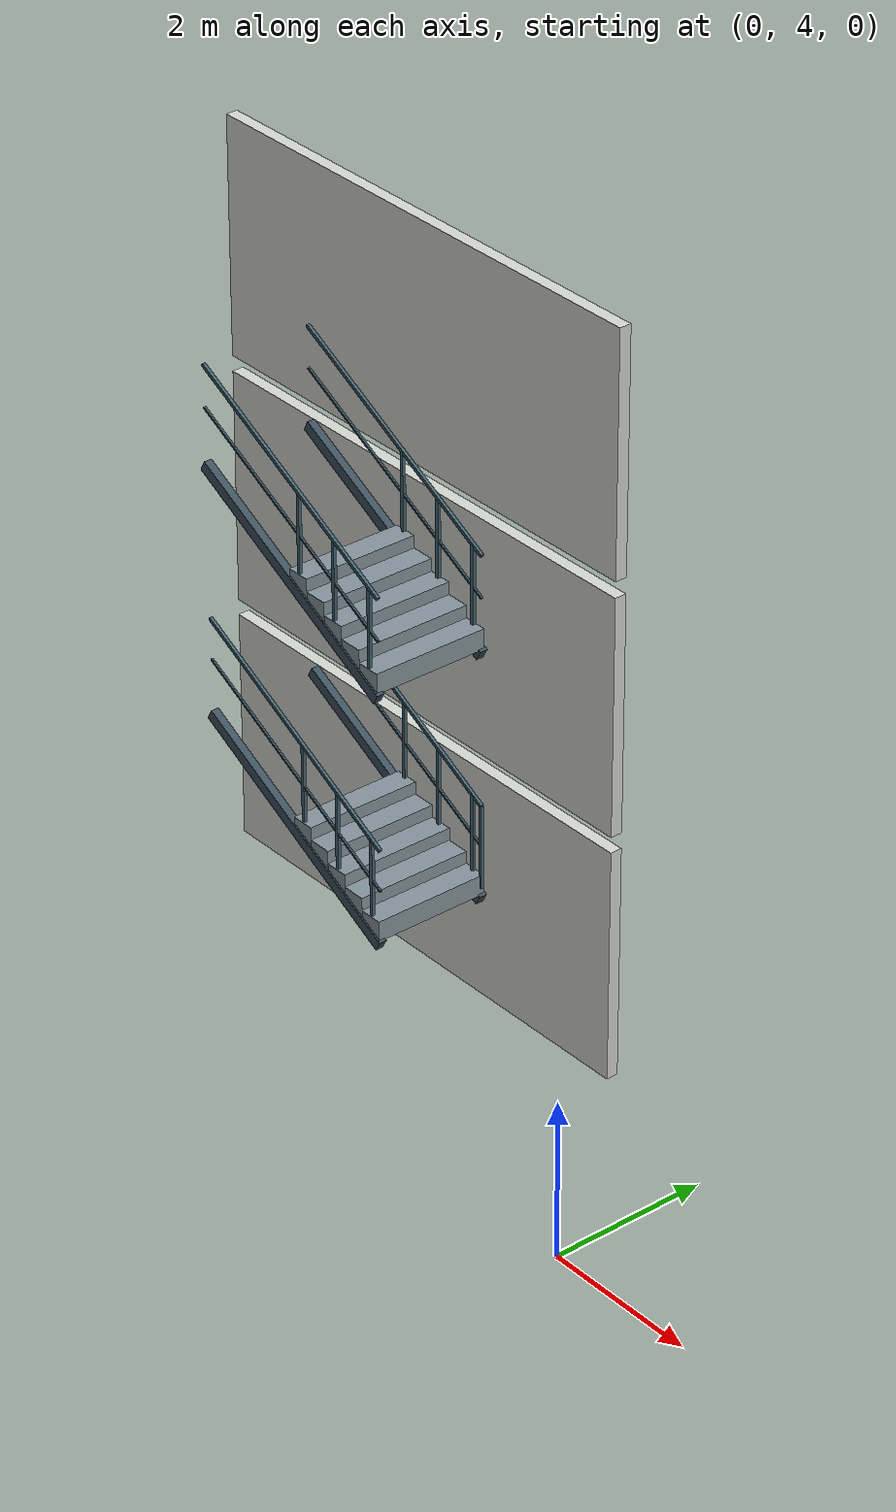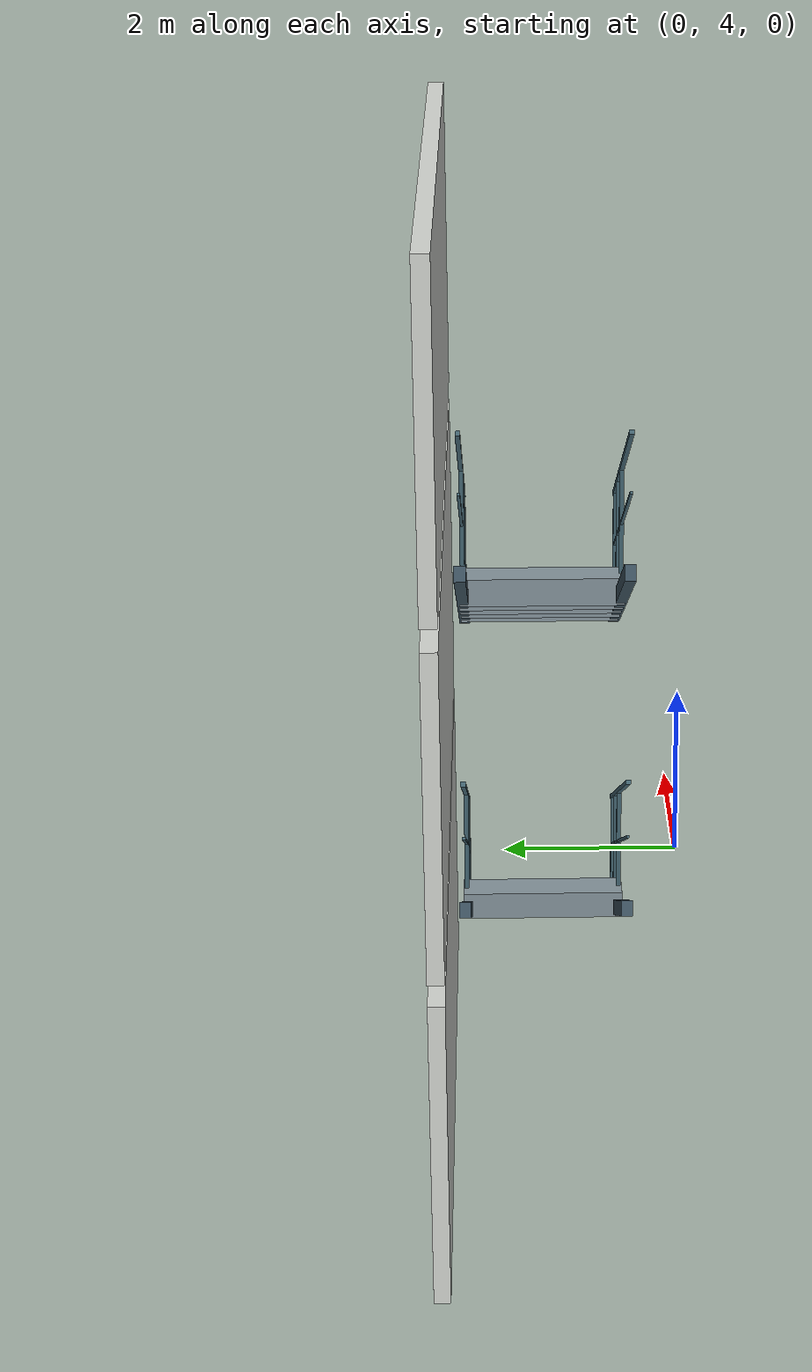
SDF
<sdf version="1.6">
 <world name="three_floor">
  <model name="f1_wall_030">
   <static>true</static>
   <pose>-5.4 6.6 1.5 0 0 0</pose>
   <link name="f1_wall_030_link">
    <collision name="f1_wall_030_collision"><geometry><box><size>6.6 0.15 3</size></box></geometry></collision>
    <visual name="f1_wall_030_visual">
     <geometry><box><size>6.6 0.15 3</size></box></geometry>
     <material><ambient>.84 .85 .83 1</ambient><diffuse>.84 .85 .83 1</diffuse></material>
    </visual>
   </link>
  </model>
  <model name="f2_wall_030">
   <static>true</static>
   <pose>-5.4 6.6 4.7 0 0 0</pose>
   <link name="f2_wall_030_link">
    <collision name="f2_wall_030_collision"><geometry><box><size>6.6 0.15 3</size></box></geometry></collision>
    <visual name="f2_wall_030_visual">
     <geometry><box><size>6.6 0.15 3</size></box></geometry>
     <material><ambient>.84 .85 .83 1</ambient><diffuse>.84 .85 .83 1</diffuse></material>
    </visual>
   </link>
  </model>
  <model name="f3_wall_030">
   <static>true</static>
   <pose>-5.4 6.6 7.9 0 0 0</pose>
   <link name="f3_wall_030_link">
    <collision name="f3_wall_030_collision"><geometry><box><size>6.6 0.15 3</size></box></geometry></collision>
    <visual name="f3_wall_030_visual">
     <geometry><box><size>6.6 0.15 3</size></box></geometry>
     <material><ambient>.84 .85 .83 1</ambient><diffuse>.84 .85 .83 1</diffuse></material>
    </visual>
   </link>
  </model>
  <model name="f1_stair_north_tread_01">
   <static>true</static>
   <pose>-4.25 5.65 1.63 0 0 0</pose>
   <link name="f1_stair_north_tread_01_link">
    <collision name="f1_stair_north_tread_01_collision">
     <geometry><box><size>0.3 1.5 0.26</size></box></geometry>
     <surface><friction><ode><mu>1.0</mu><mu2>1.0</mu2></ode></friction></surface>
    </collision>
    <visual name="f1_stair_north_tread_01_visual">
     <geometry><box><size>0.3 1.5 0.26</size></box></geometry>
     <material>
      <ambient>0.52 0.58 0.61 1</ambient>
      <diffuse>0.52 0.58 0.61 1</diffuse>
      <specular>0.04 0.04 0.04 1</specular>
     </material>
    </visual>
   </link>
  </model>
  <model name="f1_stair_north_tread_02">
   <static>true</static>
   <pose>-4.55 5.65 1.79 0 0 0</pose>
   <link name="f1_stair_north_tread_02_link">
    <collision name="f1_stair_north_tread_02_collision">
     <geometry><box><size>0.3 1.5 0.26</size></box></geometry>
     <surface><friction><ode><mu>1.0</mu><mu2>1.0</mu2></ode></friction></surface>
    </collision>
    <visual name="f1_stair_north_tread_02_visual">
     <geometry><box><size>0.3 1.5 0.26</size></box></geometry>
     <material>
      <ambient>0.52 0.58 0.61 1</ambient>
      <diffuse>0.52 0.58 0.61 1</diffuse>
      <specular>0.04 0.04 0.04 1</specular>
     </material>
    </visual>
   </link>
  </model>
  <model name="f1_stair_north_tread_03">
   <static>true</static>
   <pose>-4.85 5.65 1.95 0 0 0</pose>
   <link name="f1_stair_north_tread_03_link">
    <collision name="f1_stair_north_tread_03_collision">
     <geometry><box><size>0.3 1.5 0.26</size></box></geometry>
     <surface><friction><ode><mu>1.0</mu><mu2>1.0</mu2></ode></friction></surface>
    </collision>
    <visual name="f1_stair_north_tread_03_visual">
     <geometry><box><size>0.3 1.5 0.26</size></box></geometry>
     <material>
      <ambient>0.52 0.58 0.61 1</ambient>
      <diffuse>0.52 0.58 0.61 1</diffuse>
      <specular>0.04 0.04 0.04 1</specular>
     </material>
    </visual>
   </link>
  </model>
  <model name="f1_stair_north_tread_04">
   <static>true</static>
   <pose>-5.15 5.65 2.11 0 0 0</pose>
   <link name="f1_stair_north_tread_04_link">
    <collision name="f1_stair_north_tread_04_collision">
     <geometry><box><size>0.3 1.5 0.26</size></box></geometry>
     <surface><friction><ode><mu>1.0</mu><mu2>1.0</mu2></ode></friction></surface>
    </collision>
    <visual name="f1_stair_north_tread_04_visual">
     <geometry><box><size>0.3 1.5 0.26</size></box></geometry>
     <material>
      <ambient>0.52 0.58 0.61 1</ambient>
      <diffuse>0.52 0.58 0.61 1</diffuse>
      <specular>0.04 0.04 0.04 1</specular>
     </material>
    </visual>
   </link>
  </model>
  <model name="f1_stair_north_tread_05">
   <static>true</static>
   <pose>-5.45 5.65 2.27 0 0 0</pose>
   <link name="f1_stair_north_tread_05_link">
    <collision name="f1_stair_north_tread_05_collision">
     <geometry><box><size>0.3 1.5 0.26</size></box></geometry>
     <surface><friction><ode><mu>1.0</mu><mu2>1.0</mu2></ode></friction></surface>
    </collision>
    <visual name="f1_stair_north_tread_05_visual">
     <geometry><box><size>0.3 1.5 0.26</size></box></geometry>
     <material>
      <ambient>0.52 0.58 0.61 1</ambient>
      <diffuse>0.52 0.58 0.61 1</diffuse>
      <specular>0.04 0.04 0.04 1</specular>
     </material>
    </visual>
   </link>
  </model>
  <model name="f1_stair_north_outer_stringer">
   <static>true</static>
   <pose>-5.6 6.37 2.24 0 -0.489957326 3.141592654</pose>
   <link name="f1_stair_north_outer_stringer_link">
    <collision name="f1_stair_north_outer_stringer_collision">
     <geometry><box><size>3.4 0.1 0.14</size></box></geometry>
    </collision>
    <visual name="f1_stair_north_outer_stringer_visual">
     <geometry><box><size>3.4 0.1 0.14</size></box></geometry>
     <material>
      <ambient>0.23 0.31 0.36 1</ambient>
      <diffuse>0.23 0.31 0.36 1</diffuse>
      <specular>0.04 0.04 0.04 1</specular>
     </material>
    </visual>
   </link>
  </model>
  <model name="f1_stair_north_outer_handrail">
   <static>true</static>
   <pose>-5.6 6.37 3.48 0 -0.489957326 3.141592654</pose>
   <link name="f1_stair_north_outer_handrail_link">
    <collision name="f1_stair_north_outer_handrail_collision">
     <geometry><box><size>3.4 0.04 0.04</size></box></geometry>
    </collision>
    <visual name="f1_stair_north_outer_handrail_visual">
     <geometry><box><size>3.4 0.04 0.04</size></box></geometry>
     <material>
      <ambient>0.26 0.39 0.44 1</ambient>
      <diffuse>0.26 0.39 0.44 1</diffuse>
      <specular>0.04 0.04 0.04 1</specular>
     </material>
    </visual>
   </link>
  </model>
  <model name="f1_stair_north_outer_midrail">
   <static>true</static>
   <pose>-5.6 6.37 2.95 0 -0.489957326 3.141592654</pose>
   <link name="f1_stair_north_outer_midrail_link">
    <collision name="f1_stair_north_outer_midrail_collision">
     <geometry><box><size>3.4 0.025 0.025</size></box></geometry>
    </collision>
    <visual name="f1_stair_north_outer_midrail_visual">
     <geometry><box><size>3.4 0.025 0.025</size></box></geometry>
     <material>
      <ambient>0.26 0.39 0.44 1</ambient>
      <diffuse>0.26 0.39 0.44 1</diffuse>
      <specular>0.04 0.04 0.04 1</specular>
     </material>
    </visual>
   </link>
  </model>
  <model name="f1_stair_north_outer_post_00">
   <static>true</static>
   <pose>-4.25 6.37 2.26 0 0 0</pose>
   <link name="f1_stair_north_outer_post_00_link">
    <collision name="f1_stair_north_outer_post_00_collision">
     <geometry><box><size>0.04 0.04 1</size></box></geometry>
    </collision>
    <visual name="f1_stair_north_outer_post_00_visual">
     <geometry><box><size>0.04 0.04 1</size></box></geometry>
     <material>
      <ambient>0.26 0.39 0.44 1</ambient>
      <diffuse>0.26 0.39 0.44 1</diffuse>
      <specular>0.04 0.04 0.04 1</specular>
     </material>
    </visual>
   </link>
  </model>
  <model name="f1_stair_north_outer_post_01">
   <static>true</static>
   <pose>-4.85 6.37 2.58 0 0 0</pose>
   <link name="f1_stair_north_outer_post_01_link">
    <collision name="f1_stair_north_outer_post_01_collision">
     <geometry><box><size>0.04 0.04 1</size></box></geometry>
    </collision>
    <visual name="f1_stair_north_outer_post_01_visual">
     <geometry><box><size>0.04 0.04 1</size></box></geometry>
     <material>
      <ambient>0.26 0.39 0.44 1</ambient>
      <diffuse>0.26 0.39 0.44 1</diffuse>
      <specular>0.04 0.04 0.04 1</specular>
     </material>
    </visual>
   </link>
  </model>
  <model name="f1_stair_north_outer_post_02">
   <static>true</static>
   <pose>-5.45 6.37 2.9 0 0 0</pose>
   <link name="f1_stair_north_outer_post_02_link">
    <collision name="f1_stair_north_outer_post_02_collision">
     <geometry><box><size>0.04 0.04 1</size></box></geometry>
    </collision>
    <visual name="f1_stair_north_outer_post_02_visual">
     <geometry><box><size>0.04 0.04 1</size></box></geometry>
     <material>
      <ambient>0.26 0.39 0.44 1</ambient>
      <diffuse>0.26 0.39 0.44 1</diffuse>
      <specular>0.04 0.04 0.04 1</specular>
     </material>
    </visual>
   </link>
  </model>
  <model name="f1_stair_north_inner_stringer">
   <static>true</static>
   <pose>-5.6 4.93 2.24 0 -0.489957326 3.141592654</pose>
   <link name="f1_stair_north_inner_stringer_link">
    <collision name="f1_stair_north_inner_stringer_collision">
     <geometry><box><size>3.4 0.1 0.14</size></box></geometry>
    </collision>
    <visual name="f1_stair_north_inner_stringer_visual">
     <geometry><box><size>3.4 0.1 0.14</size></box></geometry>
     <material>
      <ambient>0.23 0.31 0.36 1</ambient>
      <diffuse>0.23 0.31 0.36 1</diffuse>
      <specular>0.04 0.04 0.04 1</specular>
     </material>
    </visual>
   </link>
  </model>
  <model name="f1_stair_north_inner_handrail">
   <static>true</static>
   <pose>-5.6 4.93 3.48 0 -0.489957326 3.141592654</pose>
   <link name="f1_stair_north_inner_handrail_link">
    <collision name="f1_stair_north_inner_handrail_collision">
     <geometry><box><size>3.4 0.04 0.04</size></box></geometry>
    </collision>
    <visual name="f1_stair_north_inner_handrail_visual">
     <geometry><box><size>3.4 0.04 0.04</size></box></geometry>
     <material>
      <ambient>0.26 0.39 0.44 1</ambient>
      <diffuse>0.26 0.39 0.44 1</diffuse>
      <specular>0.04 0.04 0.04 1</specular>
     </material>
    </visual>
   </link>
  </model>
  <model name="f1_stair_north_inner_midrail">
   <static>true</static>
   <pose>-5.6 4.93 2.95 0 -0.489957326 3.141592654</pose>
   <link name="f1_stair_north_inner_midrail_link">
    <collision name="f1_stair_north_inner_midrail_collision">
     <geometry><box><size>3.4 0.025 0.025</size></box></geometry>
    </collision>
    <visual name="f1_stair_north_inner_midrail_visual">
     <geometry><box><size>3.4 0.025 0.025</size></box></geometry>
     <material>
      <ambient>0.26 0.39 0.44 1</ambient>
      <diffuse>0.26 0.39 0.44 1</diffuse>
      <specular>0.04 0.04 0.04 1</specular>
     </material>
    </visual>
   </link>
  </model>
  <model name="f1_stair_north_inner_post_00">
   <static>true</static>
   <pose>-4.25 4.93 2.26 0 0 0</pose>
   <link name="f1_stair_north_inner_post_00_link">
    <collision name="f1_stair_north_inner_post_00_collision">
     <geometry><box><size>0.04 0.04 1</size></box></geometry>
    </collision>
    <visual name="f1_stair_north_inner_post_00_visual">
     <geometry><box><size>0.04 0.04 1</size></box></geometry>
     <material>
      <ambient>0.26 0.39 0.44 1</ambient>
      <diffuse>0.26 0.39 0.44 1</diffuse>
      <specular>0.04 0.04 0.04 1</specular>
     </material>
    </visual>
   </link>
  </model>
  <model name="f1_stair_north_inner_post_01">
   <static>true</static>
   <pose>-4.85 4.93 2.58 0 0 0</pose>
   <link name="f1_stair_north_inner_post_01_link">
    <collision name="f1_stair_north_inner_post_01_collision">
     <geometry><box><size>0.04 0.04 1</size></box></geometry>
    </collision>
    <visual name="f1_stair_north_inner_post_01_visual">
     <geometry><box><size>0.04 0.04 1</size></box></geometry>
     <material>
      <ambient>0.26 0.39 0.44 1</ambient>
      <diffuse>0.26 0.39 0.44 1</diffuse>
      <specular>0.04 0.04 0.04 1</specular>
     </material>
    </visual>
   </link>
  </model>
  <model name="f1_stair_north_inner_post_02">
   <static>true</static>
   <pose>-5.45 4.93 2.9 0 0 0</pose>
   <link name="f1_stair_north_inner_post_02_link">
    <collision name="f1_stair_north_inner_post_02_collision">
     <geometry><box><size>0.04 0.04 1</size></box></geometry>
    </collision>
    <visual name="f1_stair_north_inner_post_02_visual">
     <geometry><box><size>0.04 0.04 1</size></box></geometry>
     <material>
      <ambient>0.26 0.39 0.44 1</ambient>
      <diffuse>0.26 0.39 0.44 1</diffuse>
      <specular>0.04 0.04 0.04 1</specular>
     </material>
    </visual>
   </link>
  </model>
  <model name="f1_stair_mid_north_guard_post_00">
   <static>true</static>
   <pose>-4.1 6.37 2.14 0 0 0</pose>
   <link name="f1_stair_mid_north_guard_post_00_link">
    <collision name="f1_stair_mid_north_guard_post_00_collision">
     <geometry><box><size>0.04 0.04 1.08</size></box></geometry>
    </collision>
    <visual name="f1_stair_mid_north_guard_post_00_visual">
     <geometry><box><size>0.04 0.04 1.08</size></box></geometry>
     <material>
      <ambient>0.26 0.39 0.44 1</ambient>
      <diffuse>0.26 0.39 0.44 1</diffuse>
      <specular>0.04 0.04 0.04 1</specular>
     </material>
    </visual>
   </link>
  </model>
  <model name="f2_stair_north_tread_01">
   <static>true</static>
   <pose>-4.25 5.65 4.83 0 0 0</pose>
   <link name="f2_stair_north_tread_01_link">
    <collision name="f2_stair_north_tread_01_collision">
     <geometry><box><size>0.3 1.5 0.26</size></box></geometry>
     <surface><friction><ode><mu>1.0</mu><mu2>1.0</mu2></ode></friction></surface>
    </collision>
    <visual name="f2_stair_north_tread_01_visual">
     <geometry><box><size>0.3 1.5 0.26</size></box></geometry>
     <material>
      <ambient>0.52 0.58 0.61 1</ambient>
      <diffuse>0.52 0.58 0.61 1</diffuse>
      <specular>0.04 0.04 0.04 1</specular>
     </material>
    </visual>
   </link>
  </model>
  <model name="f2_stair_north_tread_02">
   <static>true</static>
   <pose>-4.55 5.65 4.99 0 0 0</pose>
   <link name="f2_stair_north_tread_02_link">
    <collision name="f2_stair_north_tread_02_collision">
     <geometry><box><size>0.3 1.5 0.26</size></box></geometry>
     <surface><friction><ode><mu>1.0</mu><mu2>1.0</mu2></ode></friction></surface>
    </collision>
    <visual name="f2_stair_north_tread_02_visual">
     <geometry><box><size>0.3 1.5 0.26</size></box></geometry>
     <material>
      <ambient>0.52 0.58 0.61 1</ambient>
      <diffuse>0.52 0.58 0.61 1</diffuse>
      <specular>0.04 0.04 0.04 1</specular>
     </material>
    </visual>
   </link>
  </model>
  <model name="f2_stair_north_tread_03">
   <static>true</static>
   <pose>-4.85 5.65 5.15 0 0 0</pose>
   <link name="f2_stair_north_tread_03_link">
    <collision name="f2_stair_north_tread_03_collision">
     <geometry><box><size>0.3 1.5 0.26</size></box></geometry>
     <surface><friction><ode><mu>1.0</mu><mu2>1.0</mu2></ode></friction></surface>
    </collision>
    <visual name="f2_stair_north_tread_03_visual">
     <geometry><box><size>0.3 1.5 0.26</size></box></geometry>
     <material>
      <ambient>0.52 0.58 0.61 1</ambient>
      <diffuse>0.52 0.58 0.61 1</diffuse>
      <specular>0.04 0.04 0.04 1</specular>
     </material>
    </visual>
   </link>
  </model>
  <model name="f2_stair_north_tread_04">
   <static>true</static>
   <pose>-5.15 5.65 5.31 0 0 0</pose>
   <link name="f2_stair_north_tread_04_link">
    <collision name="f2_stair_north_tread_04_collision">
     <geometry><box><size>0.3 1.5 0.26</size></box></geometry>
     <surface><friction><ode><mu>1.0</mu><mu2>1.0</mu2></ode></friction></surface>
    </collision>
    <visual name="f2_stair_north_tread_04_visual">
     <geometry><box><size>0.3 1.5 0.26</size></box></geometry>
     <material>
      <ambient>0.52 0.58 0.61 1</ambient>
      <diffuse>0.52 0.58 0.61 1</diffuse>
      <specular>0.04 0.04 0.04 1</specular>
     </material>
    </visual>
   </link>
  </model>
  <model name="f2_stair_north_tread_05">
   <static>true</static>
   <pose>-5.45 5.65 5.47 0 0 0</pose>
   <link name="f2_stair_north_tread_05_link">
    <collision name="f2_stair_north_tread_05_collision">
     <geometry><box><size>0.3 1.5 0.26</size></box></geometry>
     <surface><friction><ode><mu>1.0</mu><mu2>1.0</mu2></ode></friction></surface>
    </collision>
    <visual name="f2_stair_north_tread_05_visual">
     <geometry><box><size>0.3 1.5 0.26</size></box></geometry>
     <material>
      <ambient>0.52 0.58 0.61 1</ambient>
      <diffuse>0.52 0.58 0.61 1</diffuse>
      <specular>0.04 0.04 0.04 1</specular>
     </material>
    </visual>
   </link>
  </model>
  <model name="f2_stair_north_outer_stringer">
   <static>true</static>
   <pose>-5.6 6.37 5.44 0 -0.489957326 3.141592654</pose>
   <link name="f2_stair_north_outer_stringer_link">
    <collision name="f2_stair_north_outer_stringer_collision">
     <geometry><box><size>3.4 0.1 0.14</size></box></geometry>
    </collision>
    <visual name="f2_stair_north_outer_stringer_visual">
     <geometry><box><size>3.4 0.1 0.14</size></box></geometry>
     <material>
      <ambient>0.23 0.31 0.36 1</ambient>
      <diffuse>0.23 0.31 0.36 1</diffuse>
      <specular>0.04 0.04 0.04 1</specular>
     </material>
    </visual>
   </link>
  </model>
  <model name="f2_stair_north_outer_handrail">
   <static>true</static>
   <pose>-5.6 6.37 6.68 0 -0.489957326 3.141592654</pose>
   <link name="f2_stair_north_outer_handrail_link">
    <collision name="f2_stair_north_outer_handrail_collision">
     <geometry><box><size>3.4 0.04 0.04</size></box></geometry>
    </collision>
    <visual name="f2_stair_north_outer_handrail_visual">
     <geometry><box><size>3.4 0.04 0.04</size></box></geometry>
     <material>
      <ambient>0.26 0.39 0.44 1</ambient>
      <diffuse>0.26 0.39 0.44 1</diffuse>
      <specular>0.04 0.04 0.04 1</specular>
     </material>
    </visual>
   </link>
  </model>
  <model name="f2_stair_north_outer_midrail">
   <static>true</static>
   <pose>-5.6 6.37 6.15 0 -0.489957326 3.141592654</pose>
   <link name="f2_stair_north_outer_midrail_link">
    <collision name="f2_stair_north_outer_midrail_collision">
     <geometry><box><size>3.4 0.025 0.025</size></box></geometry>
    </collision>
    <visual name="f2_stair_north_outer_midrail_visual">
     <geometry><box><size>3.4 0.025 0.025</size></box></geometry>
     <material>
      <ambient>0.26 0.39 0.44 1</ambient>
      <diffuse>0.26 0.39 0.44 1</diffuse>
      <specular>0.04 0.04 0.04 1</specular>
     </material>
    </visual>
   </link>
  </model>
  <model name="f2_stair_north_outer_post_00">
   <static>true</static>
   <pose>-4.25 6.37 5.46 0 0 0</pose>
   <link name="f2_stair_north_outer_post_00_link">
    <collision name="f2_stair_north_outer_post_00_collision">
     <geometry><box><size>0.04 0.04 1</size></box></geometry>
    </collision>
    <visual name="f2_stair_north_outer_post_00_visual">
     <geometry><box><size>0.04 0.04 1</size></box></geometry>
     <material>
      <ambient>0.26 0.39 0.44 1</ambient>
      <diffuse>0.26 0.39 0.44 1</diffuse>
      <specular>0.04 0.04 0.04 1</specular>
     </material>
    </visual>
   </link>
  </model>
  <model name="f2_stair_north_outer_post_01">
   <static>true</static>
   <pose>-4.85 6.37 5.78 0 0 0</pose>
   <link name="f2_stair_north_outer_post_01_link">
    <collision name="f2_stair_north_outer_post_01_collision">
     <geometry><box><size>0.04 0.04 1</size></box></geometry>
    </collision>
    <visual name="f2_stair_north_outer_post_01_visual">
     <geometry><box><size>0.04 0.04 1</size></box></geometry>
     <material>
      <ambient>0.26 0.39 0.44 1</ambient>
      <diffuse>0.26 0.39 0.44 1</diffuse>
      <specular>0.04 0.04 0.04 1</specular>
     </material>
    </visual>
   </link>
  </model>
  <model name="f2_stair_north_outer_post_02">
   <static>true</static>
   <pose>-5.45 6.37 6.1 0 0 0</pose>
   <link name="f2_stair_north_outer_post_02_link">
    <collision name="f2_stair_north_outer_post_02_collision">
     <geometry><box><size>0.04 0.04 1</size></box></geometry>
    </collision>
    <visual name="f2_stair_north_outer_post_02_visual">
     <geometry><box><size>0.04 0.04 1</size></box></geometry>
     <material>
      <ambient>0.26 0.39 0.44 1</ambient>
      <diffuse>0.26 0.39 0.44 1</diffuse>
      <specular>0.04 0.04 0.04 1</specular>
     </material>
    </visual>
   </link>
  </model>
  <model name="f2_stair_north_inner_stringer">
   <static>true</static>
   <pose>-5.6 4.93 5.44 0 -0.489957326 3.141592654</pose>
   <link name="f2_stair_north_inner_stringer_link">
    <collision name="f2_stair_north_inner_stringer_collision">
     <geometry><box><size>3.4 0.1 0.14</size></box></geometry>
    </collision>
    <visual name="f2_stair_north_inner_stringer_visual">
     <geometry><box><size>3.4 0.1 0.14</size></box></geometry>
     <material>
      <ambient>0.23 0.31 0.36 1</ambient>
      <diffuse>0.23 0.31 0.36 1</diffuse>
      <specular>0.04 0.04 0.04 1</specular>
     </material>
    </visual>
   </link>
  </model>
  <model name="f2_stair_north_inner_handrail">
   <static>true</static>
   <pose>-5.6 4.93 6.68 0 -0.489957326 3.141592654</pose>
   <link name="f2_stair_north_inner_handrail_link">
    <collision name="f2_stair_north_inner_handrail_collision">
     <geometry><box><size>3.4 0.04 0.04</size></box></geometry>
    </collision>
    <visual name="f2_stair_north_inner_handrail_visual">
     <geometry><box><size>3.4 0.04 0.04</size></box></geometry>
     <material>
      <ambient>0.26 0.39 0.44 1</ambient>
      <diffuse>0.26 0.39 0.44 1</diffuse>
      <specular>0.04 0.04 0.04 1</specular>
     </material>
    </visual>
   </link>
  </model>
  <model name="f2_stair_north_inner_midrail">
   <static>true</static>
   <pose>-5.6 4.93 6.15 0 -0.489957326 3.141592654</pose>
   <link name="f2_stair_north_inner_midrail_link">
    <collision name="f2_stair_north_inner_midrail_collision">
     <geometry><box><size>3.4 0.025 0.025</size></box></geometry>
    </collision>
    <visual name="f2_stair_north_inner_midrail_visual">
     <geometry><box><size>3.4 0.025 0.025</size></box></geometry>
     <material>
      <ambient>0.26 0.39 0.44 1</ambient>
      <diffuse>0.26 0.39 0.44 1</diffuse>
      <specular>0.04 0.04 0.04 1</specular>
     </material>
    </visual>
   </link>
  </model>
  <model name="f2_stair_north_inner_post_00">
   <static>true</static>
   <pose>-4.25 4.93 5.46 0 0 0</pose>
   <link name="f2_stair_north_inner_post_00_link">
    <collision name="f2_stair_north_inner_post_00_collision">
     <geometry><box><size>0.04 0.04 1</size></box></geometry>
    </collision>
    <visual name="f2_stair_north_inner_post_00_visual">
     <geometry><box><size>0.04 0.04 1</size></box></geometry>
     <material>
      <ambient>0.26 0.39 0.44 1</ambient>
      <diffuse>0.26 0.39 0.44 1</diffuse>
      <specular>0.04 0.04 0.04 1</specular>
     </material>
    </visual>
   </link>
  </model>
  <model name="f2_stair_north_inner_post_01">
   <static>true</static>
   <pose>-4.85 4.93 5.78 0 0 0</pose>
   <link name="f2_stair_north_inner_post_01_link">
    <collision name="f2_stair_north_inner_post_01_collision">
     <geometry><box><size>0.04 0.04 1</size></box></geometry>
    </collision>
    <visual name="f2_stair_north_inner_post_01_visual">
     <geometry><box><size>0.04 0.04 1</size></box></geometry>
     <material>
      <ambient>0.26 0.39 0.44 1</ambient>
      <diffuse>0.26 0.39 0.44 1</diffuse>
      <specular>0.04 0.04 0.04 1</specular>
     </material>
    </visual>
   </link>
  </model>
  <model name="f2_stair_north_inner_post_02">
   <static>true</static>
   <pose>-5.45 4.93 6.1 0 0 0</pose>
   <link name="f2_stair_north_inner_post_02_link">
    <collision name="f2_stair_north_inner_post_02_collision">
     <geometry><box><size>0.04 0.04 1</size></box></geometry>
    </collision>
    <visual name="f2_stair_north_inner_post_02_visual">
     <geometry><box><size>0.04 0.04 1</size></box></geometry>
     <material>
      <ambient>0.26 0.39 0.44 1</ambient>
      <diffuse>0.26 0.39 0.44 1</diffuse>
      <specular>0.04 0.04 0.04 1</specular>
     </material>
    </visual>
   </link>
  </model>
 </world>
</sdf>
